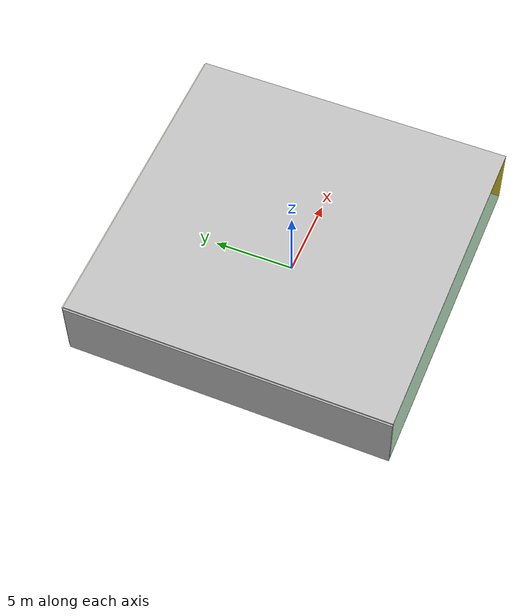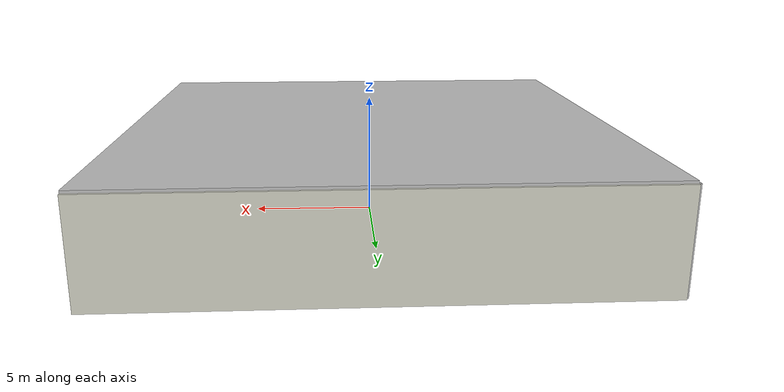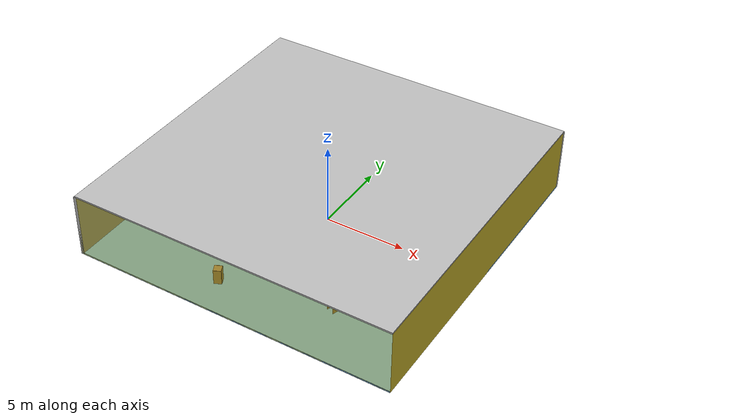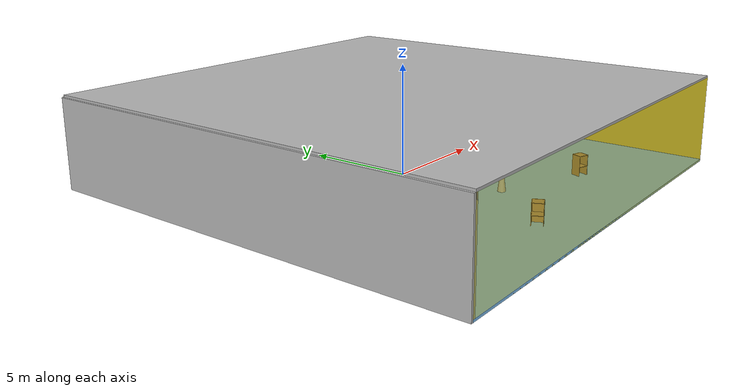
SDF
<sdf version="1.4">
 <world name="default">
  <physics type="ode">
   <max_step_size>0.001</max_step_size>
   <real_time_factor>1</real_time_factor>
   <real_time_update_rate>1000</real_time_update_rate>
   <gravity>0 0 -9.8</gravity>
  </physics>
  <scene><ambient>0.4 0.4 0.4 1</ambient><background>0.7 0.7 0.7 1</background><shadows>1</shadows></scene>
  <model name="Surrounding">
   <static>1</static>
   <link name="Ceiling">
    <collision name="Ceiling_Collision"><geometry><box><size>20 20 0.1</size></box></geometry></collision>
    <visual name="Ceiling_Visual">
     <geometry><box><size>20 20 0.1</size></box></geometry>
     <material>
      <script><uri>file://media/materials/scripts/gazebo.material</uri><name>Gazebo/PioneerBody</name></script>
     </material>
    </visual>
    <pose>0 0 4.05 0 0 0</pose>
   </link>
   <link name="Wall_South">
    <collision name="Wall_South_Collision">
     <geometry><box><size>20 0 4</size></box></geometry>
     <pose>0 0 2 0 -0 0</pose>
    </collision>
    <visual name="Wall_South_Visual">
     <pose>0 0 2 0 -0 0</pose>
     <geometry><box><size>20 0 4</size></box></geometry>
     <material>
      <script>
       <uri>file://media/materials/scripts/gazebo.material</uri>
       <name>Gazebo/YellowTransparent</name>
      </script>
     </material>
    </visual>
    <velocity_decay><linear>0</linear><angular>0</angular></velocity_decay>
    <pose>0 -10 0 0 -0 0</pose>
   </link>
   <link name="Wall_East">
    <collision name="Wall_21_Collision">
     <geometry><box><size>20 0 4</size></box></geometry>
     <pose>0 0 2 0 -0 0</pose>
    </collision>
    <visual name="Wall_21_Visual">
     <pose>0 0 2 0 -0 0</pose>
     <geometry><box><size>20 0 4</size></box></geometry>
     <material>
      <script><uri>file://media/materials/scripts/gazebo.material</uri><name>Gazebo/ZincYellow</name></script>
     </material>
    </visual>
    <velocity_decay><linear>0</linear><angular>0</angular></velocity_decay>
    <pose>10 0 0 0 -0 1.5708</pose>
   </link>
   <link name="Wall_North">
    <collision name="Wall_22_Collision">
     <geometry><box><size>20 0.2 4</size></box></geometry>
     <pose>0 0 2 0 -0 0</pose>
    </collision>
    <visual name="Wall_22_Visual">
     <pose>0 0 2 0 -0 0</pose>
     <geometry><box><size>20 0.2 4</size></box></geometry>
     <material>
      <script><uri>file://media/materials/scripts/gazebo.material</uri><name>Gazebo/PaintedWall</name></script>
     </material>
    </visual>
    <velocity_decay><linear>0</linear><angular>0</angular></velocity_decay>
    <pose>0 10 0 0 -0 0</pose>
   </link>
   <link name="Wall_West">
    <collision name="Wall_23_Collision">
     <geometry><box><size>20 0.2 4</size></box></geometry>
     <pose>0 0 2 0 -0 0</pose>
    </collision>
    <visual name="Wall_23_Visual">
     <pose>0 0 2 0 -0 0</pose>
     <geometry><box><size>20 0.2 4</size></box></geometry>
     <material>
      <script><uri>file://media/materials/scripts/gazebo.material</uri><name>Gazebo/PioneerBody</name></script>
     </material>
    </visual>
    <velocity_decay><linear>0</linear><angular>0</angular></velocity_decay>
    <pose>-10 0 0 0 0 -1.5708</pose>
   </link>
   <link name="Ground_link">
    <collision name="collision">
     <pose>0 0 .05 0 -0 0</pose>
     <geometry><box><size>20 20 0.1</size></box></geometry>
    </collision>
    <visual name="visual">
     <pose>0 0 .05 0 -0 0</pose>
     <geometry><box><size>20 20 0.1</size></box></geometry>
     <material>
      <script><uri>file://media/materials/scripts/gazebo.material</uri><name>Gazebo/SkyBlue</name></script>
     </material>
    </visual>
   </link>
   <static>1</static>
  </model>
  <spherical_coordinates>
   <surface_model>EARTH_WGS84</surface_model>
   <latitude_deg>0</latitude_deg>
   <longitude_deg>0</longitude_deg>
   <elevation>0</elevation>
   <heading_deg>0</heading_deg>
  </spherical_coordinates>
  <light name="lightball_0" type="diffuse">
   <diffuse>0.8 0.8 0.8 1</diffuse>
   <specular>0.2 0.2 0.2 1</specular>
   <attenuation>
    <range>100</range>
    <constant>0.7</constant>
    <linear>0.01</linear>
    <quadratic>0.001</quadratic>
   </attenuation>
   <direction>-0.5 0.1 -0.9</direction>
   <pose>-6.9712576154 -4.56686368145 3.52616536907 0 0 0</pose>
  </light>
  <light name="lightball_1" type="diffuse">
   <diffuse>0.8 0.8 0.8 1</diffuse>
   <specular>0.2 0.2 0.2 1</specular>
   <attenuation>
    <range>100</range>
    <constant>0.7</constant>
    <linear>0.01</linear>
    <quadratic>0.001</quadratic>
   </attenuation>
   <direction>-0.5 0.1 -0.9</direction>
   <pose>-2.49031715324 2.45791642625 3.72615025717 0 0 0</pose>
  </light>
  <light name="lightball_2" type="diffuse">
   <diffuse>0.8 0.8 0.8 1</diffuse>
   <specular>0.2 0.2 0.2 1</specular>
   <attenuation>
    <range>100</range>
    <constant>0.7</constant>
    <linear>0.01</linear>
    <quadratic>0.001</quadratic>
   </attenuation>
   <direction>-0.5 0.1 -0.9</direction>
   <pose>6.53362885719 -2.3486804931 1.71730605064 0 0 0</pose>
  </light>
  <include><uri>model://cabinet</uri><pose>-8.06449884943 -3.87009132777 0 0 0 3.126141914</pose></include>
  <include><uri>model://table</uri><pose>-7.47109633928 -0.909672993704 0 0 0 0.499362292757</pose></include>
  <include>
   <uri>model://robocup_3Dsim_goal</uri>
   <pose>-6.53866849982 1.9745500445 0 0 0 1.9361195913</pose>
  </include>
  <include><uri>model://cabinet</uri><pose>-2.10703647345 -7.86873544283 0 0 0 0.442173859195</pose></include>
  <include>
   <uri>model://construction_cone</uri>
   <pose>-1.40222017604 -4.51503329754 0 0 0 3.00193326465</pose>
  </include>
  <include>
   <uri>model://construction_cone</uri>
   <pose>0.402703801033 -4.85669534903 0 0 0 0.903669768707</pose>
  </include>
  <include><uri>model://cabinet</uri><pose>0.598265915754 -1.24689937046 0 0 0 1.31001985221</pose></include>
  <include><uri>model://cabinet</uri><pose>4.4419118976 -6.46956291088 0 0 0 1.2241794047</pose></include>
  <include>
   <uri>model://construction_cone</uri>
   <pose>3.33668341455 -1.84341173707 0 0 0 2.13485117918</pose>
  </include>
  <include>
   <uri>model://construction_cone</uri>
   <pose>4.93980587157 5.51651710624 0 0 0 2.56462470738</pose>
  </include>
  <include><uri>model://cabinet</uri><pose>8.00766698162 2.31094165127 0 0 0 1.11711428804</pose></include>
 </world>
</sdf>

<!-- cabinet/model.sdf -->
<sdf version="1.5">
  <model name="cabinet">
    <static>true</static>
    <link name="cabinet_bottom_plate">
      <inertial>
        <pose>0 0 -1 0 0 0</pose>
        <inertia>
          <ixx>2.050000</ixx>
          <ixy>0</ixy>
          <ixz>0</ixz>
          <iyy>2.050000</iyy>
          <iyz>0</iyz>
          <izz>2.050000</izz>
        </inertia>
        <mass>25.000000</mass>
      </inertial>
      <collision name="cabinet_bottom_plate_geom">
        <pose>0 0 0.010000 0 0 0</pose>
        <geometry>
          <box>
            <size>0.450000 0.450000 0.020000</size>
          </box>
        </geometry>
      </collision>
      <visual name="cabinet_bottom_plate_geom_visual">
        <pose>0 0 0.010000 0 0 0</pose>
        <geometry>
          <box>
            <size>0.450000 0.450000 0.020000</size>
          </box>
        </geometry>
        <material>
          <script>
            <uri>model://media/materials/scripts/gazebo.material</uri>
            <name>Gazebo/Wood</name>
          </script>
        </material>
      </visual>
      <collision name="cabinet_bottom_plate_geom_cabinet_back_plate">
        <pose>0.235000 0 0.510000 0 0 0</pose>
        <geometry>
          <box>
            <size>0.020000 0.450000 1.020000</size>
          </box>
        </geometry>
      </collision>
      <visual name="cabinet_bottom_plate_geom_cabinet_back_plate_visual">
        <pose>0.235000 0 0.510000 0 0 0</pose>
        <geometry>
          <box>
            <size>0.020000 0.450000 1.020000</size>
          </box>
        </geometry>
        <material>
          <script>
            <uri>model://media/materials/scripts/gazebo.material</uri>
            <name>Gazebo/Wood</name>
          </script>
        </material>
      </visual>
      <collision name="cabinet_bottom_plate_geom_cabinet_left_plate">
        <pose>0 0.235000 0.510000 0 0 0</pose>
        <geometry>
          <box>
            <size>0.450000 0.020000 1.020000</size>
          </box>
        </geometry>
      </collision>
      <visual name="cabinet_bottom_plate_geom_cabinet_left_plate_visual">
        <pose>0 0.235000 0.510000 0 0 0</pose>
        <geometry>
          <box>
            <size>0.450000 0.020000 1.020000</size>
          </box>
        </geometry>
        <material>
          <script>
            <uri>model://media/materials/scripts/gazebo.material</uri>
            <name>Gazebo/Wood</name>
          </script>
        </material>
      </visual>
      <collision name="cabinet_bottom_plate_geom_cabinet_middle_plate">
        <pose>0 0 0.510000 0 0 0</pose>
        <geometry>
          <box>
            <size>0.450000 0.450000 0.020000</size>
          </box>
        </geometry>
      </collision>
      <visual name="cabinet_bottom_plate_geom_cabinet_middle_plate_visual">
        <pose>0 0 0.510000 0 0 0</pose>
        <geometry>
          <box>
            <size>0.450000 0.450000 0.020000</size>
          </box>
        </geometry>
        <material>
          <script>
            <uri>model://media/materials/scripts/gazebo.material</uri>
            <name>Gazebo/Wood</name>
          </script>
        </material>
      </visual>
      <collision name="cabinet_bottom_plate_geom_cabinet_right_plate">
        <pose>0 -0.235000 0.510000 0 0 0</pose>
        <geometry>
          <box>
            <size>0.450000 0.020000 1.020000</size>
          </box>
        </geometry>
      </collision>
      <visual name="cabinet_bottom_plate_geom_cabinet_right_plate_visual">
        <pose>0 -0.235000 0.510000 0 0 0</pose>
        <geometry>
          <box>
            <size>0.450000 0.020000 1.020000</size>
          </box>
        </geometry>
        <material>
          <script>
            <uri>model://media/materials/scripts/gazebo.material</uri>
            <name>Gazebo/Wood</name>
          </script>
        </material>
      </visual>
      <collision name="cabinet_bottom_plate_geom_cabinet_top_plate">
        <pose>0 0 1.010000 0 0 0</pose>
        <geometry>
          <box>
            <size>0.450000 0.450000 0.020000</size>
          </box>
        </geometry>
      </collision>
      <visual name="cabinet_bottom_plate_geom_cabinet_top_plate_visual">
        <pose>0 0 1.010000 0 0 0</pose>
        <geometry>
          <box>
            <size>0.450000 0.450000 0.020000</size>
          </box>
        </geometry>
        <material>
          <script>
            <uri>model://media/materials/scripts/gazebo.material</uri>
            <name>Gazebo/Wood</name>
          </script>
        </material>
      </visual>
    </link>
  </model>
</sdf>

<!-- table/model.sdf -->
<sdf version="1.5">
  <model name="table">
    <static>true</static>
    <link name="link">
      <collision name="surface">
        <pose>0 0 1.0 0 0 0</pose>
        <geometry>
          <box>
            <size>1.5 0.8 0.03</size>
          </box>
        </geometry>
        <surface>
          <friction>
            <ode>
              <mu>0.6</mu>
              <mu2>0.6</mu2>
            </ode>
          </friction>
        </surface>
      </collision>
      <visual name="visual1">
        <pose>0 0 1.0 0 0 0</pose>
        <geometry>
          <box>
            <size>1.5 0.8 0.03</size>
          </box>
        </geometry>
        <material>
          <script>
            <uri>model://media/materials/scripts/gazebo.material</uri>
            <name>Gazebo/Wood</name>
          </script>
        </material>
      </visual>
      <collision name="front_left_leg">
        <pose>0.68 0.38 0.5 0 0 0</pose>
        <geometry>
          <cylinder>
            <radius>0.02</radius>
            <length>1.0</length>
          </cylinder>
        </geometry>
      </collision>
      <visual name="front_left_leg">
        <pose>0.68 0.38 0.5 0 0 0</pose>
        <geometry>
          <cylinder>
            <radius>0.02</radius>
            <length>1.0</length>
          </cylinder>
        </geometry>
        <material>
          <script>
            <uri>model://media/materials/scripts/gazebo.material</uri>
            <name>Gazebo/Grey</name>
          </script>
        </material>
      </visual>
      <collision name="front_right_leg">
        <pose>0.68 -0.38 0.5 0 0 0</pose>
        <geometry>
          <cylinder>
            <radius>0.02</radius>
            <length>1.0</length>
          </cylinder>
        </geometry>
      </collision>
      <visual name="front_right_leg">
        <pose>0.68 -0.38 0.5 0 0 0</pose>
        <geometry>
          <cylinder>
            <radius>0.02</radius>
            <length>1.0</length>
          </cylinder>
        </geometry>
        <material>
          <script>
            <uri>model://media/materials/scripts/gazebo.material</uri>
            <name>Gazebo/Grey</name>
          </script>
        </material>
      </visual>
      <collision name="back_right_leg">
        <pose>-0.68 -0.38 0.5 0 0 0</pose>
        <geometry>
          <cylinder>
            <radius>0.02</radius>
            <length>1.0</length>
          </cylinder>
        </geometry>
      </collision>
      <visual name="back_right_leg">
        <pose>-0.68 -0.38 0.5 0 0 0</pose>
        <geometry>
          <cylinder>
            <radius>0.02</radius>
            <length>1.0</length>
          </cylinder>
        </geometry>
        <material>
          <script>
            <uri>model://media/materials/scripts/gazebo.material</uri>
            <name>Gazebo/Grey</name>
          </script>
        </material>
      </visual>
      <collision name="back_left_leg">
        <pose>-0.68 0.38 0.5 0 0 0</pose>
        <geometry>
          <cylinder>
            <radius>0.02</radius>
            <length>1.0</length>
          </cylinder>
        </geometry>
      </collision>
      <visual name="back_left_leg">
        <pose>-0.68 0.38 0.5 0 0 0</pose>
        <geometry>
          <cylinder>
            <radius>0.02</radius>
            <length>1.0</length>
          </cylinder>
        </geometry>
        <material>
          <script>
            <uri>model://media/materials/scripts/gazebo.material</uri>
            <name>Gazebo/Grey</name>
          </script>
        </material>
      </visual>
    </link>
  </model>
</sdf>

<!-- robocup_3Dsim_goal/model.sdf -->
<sdf version="1.5">
  <model name="robocup_3d_goal">
    <static>true</static>
    <link name="left_post">
      <pose>0 1.05 0.45 0 0 0</pose>
      <collision name="collision">
        <geometry>
          <cylinder>
            <radius>0.05</radius>
            <length>0.9</length>
          </cylinder>
        </geometry>
      </collision>
      <visual name="visual">
        <geometry>
          <cylinder>
            <radius>0.05</radius>
            <length>0.9</length>
          </cylinder>
        </geometry>
        <material>
          <script>
            <uri>file://media/materials/scripts/gazebo.material</uri>
            <name>Gazebo/ZincYellow</name>
          </script>
        </material>
      </visual>
    </link>
    <link name="left_support_horiz_lower">
      <pose>0.30 1.05 0.01 0 0 0</pose>
      <collision name="collision">
        <geometry>
          <box>
            <size>0.50 0.02 0.02</size>
          </box>
        </geometry>
      </collision>
      <visual name="visual">
        <geometry>
          <box>
            <size>0.50 0.02 0.02</size>
          </box>
        </geometry>
        <material>
          <script>
            <uri>file://media/materials/scripts/gazebo.material</uri>
            <name>Gazebo/White</name>
          </script>
        </material>
      </visual>
    </link>
    <link name="left_support_horiz_upper">
      <pose>0.30 1.05 0.79 0 0 0</pose>
      <collision name="collision">
        <geometry>
          <box>
            <size>0.50 0.02 0.02</size>
          </box>
        </geometry>
      </collision>
      <visual name="visual">
        <geometry>
          <box>
            <size>0.50 0.02 0.02</size>
          </box>
        </geometry>
        <material>
          <script>
            <uri>file://media/materials/scripts/gazebo.material</uri>
            <name>Gazebo/White</name>
          </script>
        </material>
      </visual>
    </link>
    <link name="left_support_vertical">
      <pose>0.56 1.05 0.4 0 1.5708 0</pose>
      <collision name="collision">
        <geometry>
          <box>
            <size>0.80 0.02 0.02</size>
          </box>
        </geometry>
      </collision>
      <visual name="visual">
        <geometry>
          <box>
            <size>0.80 0.02 0.02</size>
          </box>
        </geometry>
        <material>
          <script>
            <uri>file://media/materials/scripts/gazebo.material</uri>
            <name>Gazebo/White</name>
          </script>
        </material>
      </visual>
    </link>
    <link name="right_support_horiz_lower">
      <pose>0.30 -1.05 0.01 0 0 0</pose>
      <collision name="collision">
        <geometry>
          <box>
            <size>0.50 0.02 0.02</size>
          </box>
        </geometry>
      </collision>
      <visual name="visual">
        <geometry>
          <box>
            <size>0.50 0.02 0.02</size>
          </box>
        </geometry>
        <material>
          <script>
            <uri>file://media/materials/scripts/gazebo.material</uri>
            <name>Gazebo/White</name>
          </script>
        </material>
      </visual>
    </link>
    <link name="right_support_horiz_upper">
      <pose>0.30 -1.05 0.79 0 0 0</pose>
      <collision name="collision">
        <geometry>
          <box>
            <size>0.50 0.02 0.02</size>
          </box>
        </geometry>
      </collision>
      <visual name="visual">
        <geometry>
          <box>
            <size>0.50 0.02 0.02</size>
          </box>
        </geometry>
        <material>
          <script>
            <uri>file://media/materials/scripts/gazebo.material</uri>
            <name>Gazebo/White</name>
          </script>
        </material>
      </visual>
    </link>
    <link name="right_support_vertical">
      <pose>0.56 -1.05 0.4 0 1.5708 0</pose>
      <collision name="collision">
        <geometry>
          <box>
            <size>0.80 0.02 0.02</size>
          </box>
        </geometry>
      </collision>
      <visual name="visual">
        <geometry>
          <box>
            <size>0.80 0.02 0.02</size>
          </box>
        </geometry>
        <material>
          <script>
            <uri>file://media/materials/scripts/gazebo.material</uri>
            <name>Gazebo/White</name>
          </script>
        </material>
      </visual>
    </link>
    <link name="center_support_horiz_lower">
      <pose>0.56 0 0.01 0 1.5708 0</pose>
      <collision name="collision">
        <geometry>
          <box>
            <size>0.02 2.08 0.02</size>
          </box>
        </geometry>
      </collision>
      <visual name="visual">
        <geometry>
          <box>
            <size>0.02 2.08 0.02</size>
          </box>
        </geometry>
        <material>
          <script>
            <uri>file://media/materials/scripts/gazebo.material</uri>
            <name>Gazebo/White</name>
          </script>
        </material>
      </visual>
    </link>
    <link name="center_support_horiz_upper">
      <pose>0.56 0 0.79 0 1.5708 0</pose>
      <collision name="collision">
        <geometry>
          <box>
            <size>0.02 2.08 0.02</size>
          </box>
        </geometry>
      </collision>
      <visual name="visual">
        <geometry>
          <box>
            <size>0.02 2.08 0.02</size>
          </box>
        </geometry>
        <material>
          <script>
            <uri>file://media/materials/scripts/gazebo.material</uri>
            <name>Gazebo/White</name>
          </script>
        </material>
      </visual>
    </link>
    <link name="right_post">
      <pose>0 -1.05 0.45 0 0 0</pose>
      <collision name="collision">
        <geometry>
          <cylinder>
            <radius>0.05</radius>
            <length>0.9</length>
          </cylinder>
        </geometry>
      </collision>
      <visual name="visual">
        <geometry>
          <cylinder>
            <radius>0.05</radius>
            <length>0.9</length>
          </cylinder>
        </geometry>
        <material>
          <script>
            <uri>file://media/materials/scripts/gazebo.material</uri>
            <name>Gazebo/ZincYellow</name>
          </script>
        </material>
      </visual>
    </link>
    <link name="crossbar">
      <pose>0 0 0.85 1.57 1.57 0</pose>
      <collision name="collision">
        <geometry>
          <cylinder>
            <radius>0.05</radius>
            <length>2.0</length>
          </cylinder>
        </geometry>
      </collision>
      <visual name="visual">
        <geometry>
          <cylinder>
            <radius>0.05</radius>
            <length>2.0</length>
          </cylinder>
        </geometry>
        <material>
          <script>
            <uri>file://media/materials/scripts/gazebo.material</uri>
            <name>Gazebo/ZincYellow</name>
          </script>
        </material>
      </visual>
    </link>
    <link name="center_net">
      <pose>0.56 0 0.40 0 0 0</pose>
      <collision name="collision">
        <geometry>
          <box>
            <size>0.01 2.1 0.80</size>
          </box>
        </geometry>
      </collision>
      <visual name="visual">
        <geometry>
          <box>
            <size>0.01 2.1 0.80</size>
          </box>
        </geometry>
        <material>
          <script>
            <uri>model://../model_source/models/robocup09_spl_field/materials/scripts/</uri>
            <uri>model://../model_source/models/robocup09_spl_field/materials/textures/</uri>
            <name>RoboCup/Net</name>
          </script>
        </material>
      </visual>
    </link>
    <link name="left_net">
      <pose>0.30 1.05 0.40 0 0 0</pose>
      <collision name="collision">
        <geometry>
          <box>
            <size>0.50 0.01 0.76</size>
          </box>
        </geometry>
      </collision>
      <visual name="visual">
        <geometry>
          <box>
            <size>0.50 0.01 0.76</size>
          </box>
        </geometry>
        <material>
          <script>
            <uri>model://../model_source/models/robocup09_spl_field/materials/scripts/</uri>
            <uri>model://../model_source/models/robocup09_spl_field/materials/textures/</uri>
            <name>RoboCup/Net</name>
          </script>
        </material>
      </visual>
    </link>
    <link name="right_net">
      <pose>0.30 -1.05 0.40 0 0 0</pose>
      <collision name="collision">
        <geometry>
          <box>
            <size>0.50 0.01 0.76</size>
          </box>
        </geometry>
      </collision>
      <visual name="visual">
        <geometry>
          <box>
            <size>0.50 0.01 0.76</size>
          </box>
        </geometry>
        <material>
          <script>
            <uri>model://../model_source/models/robocup09_spl_field/materials/scripts/</uri>
            <uri>model://../model_source/models/robocup09_spl_field/materials/textures/</uri>
            <name>RoboCup/Net</name>
          </script>
        </material>
      </visual>
    </link>
  </model>
</sdf>

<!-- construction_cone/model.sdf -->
<sdf version="1.5">
  <model name="Construction Cone">
    <link name="link">
      <collision name="collision">
        <geometry>
          <mesh>
            <scale>10 10 10</scale>
            <uri>file://isr-testbed/construction_cone/meshes/construction_cone.dae</uri>
          </mesh>
        </geometry>
      </collision>
      <visual name="visual">
        <geometry>
          <mesh>
            <scale>10 10 10</scale>
            <uri>file://isr-testbed/construction_cone/meshes/construction_cone.dae</uri>
          </mesh>
        </geometry>
      </visual>
    </link>
  </model>
</sdf>
